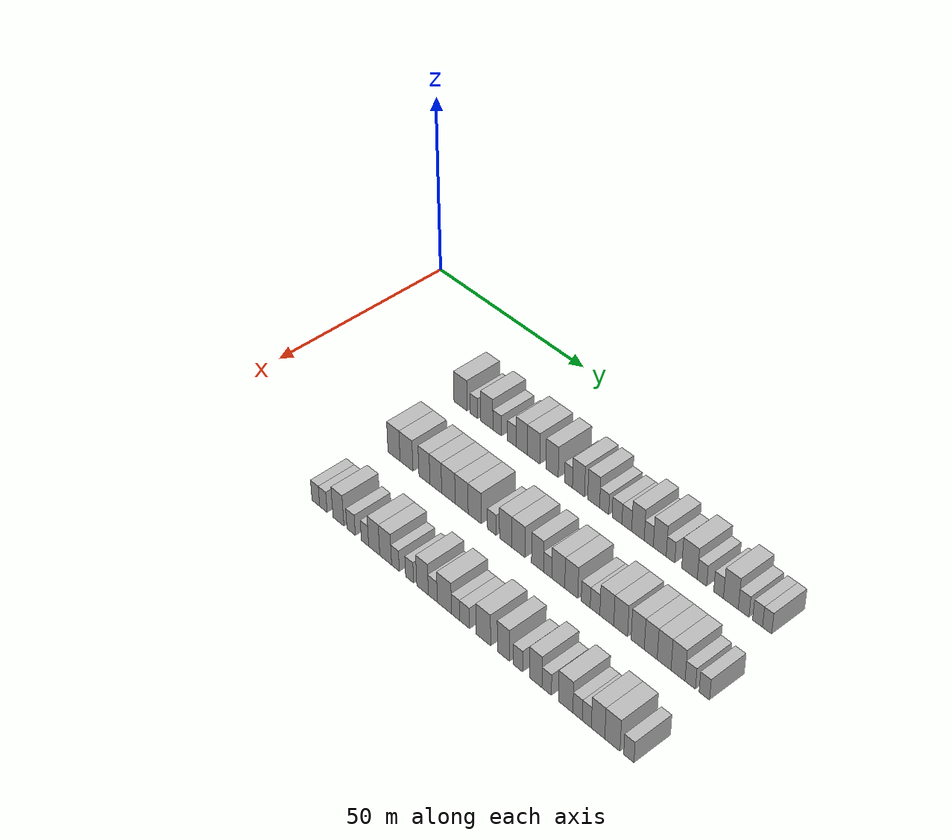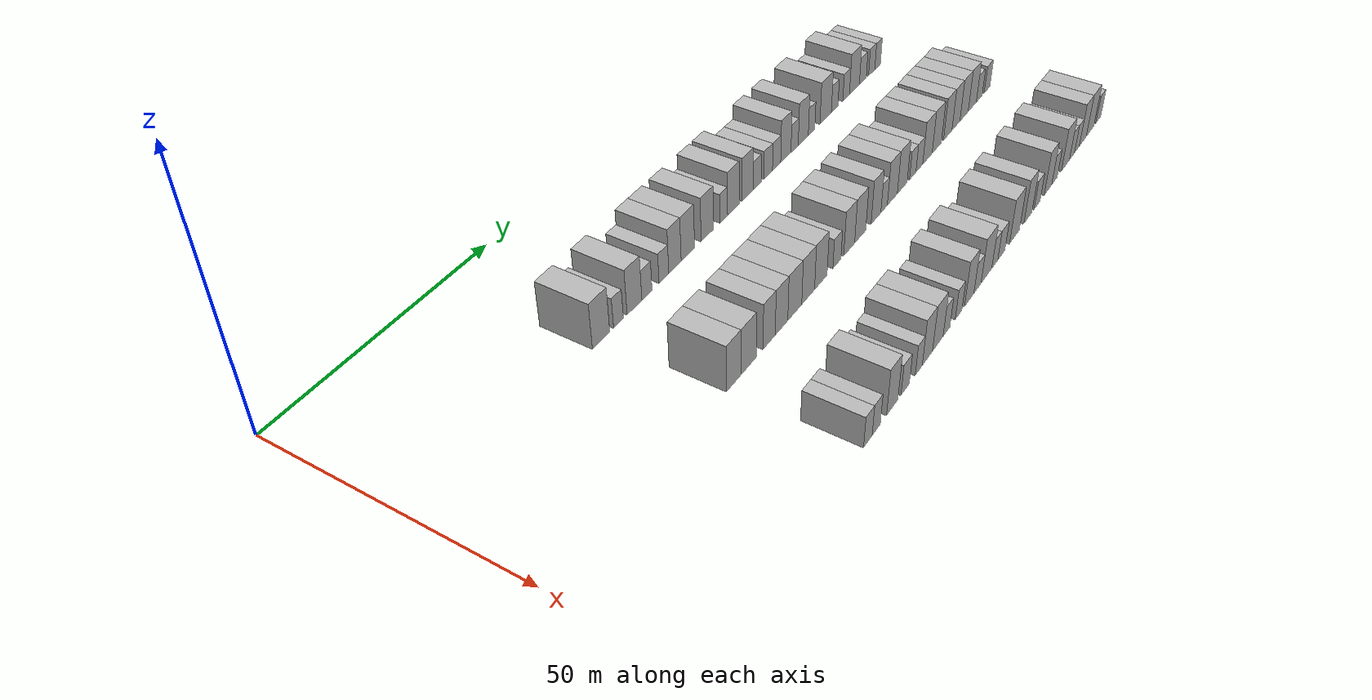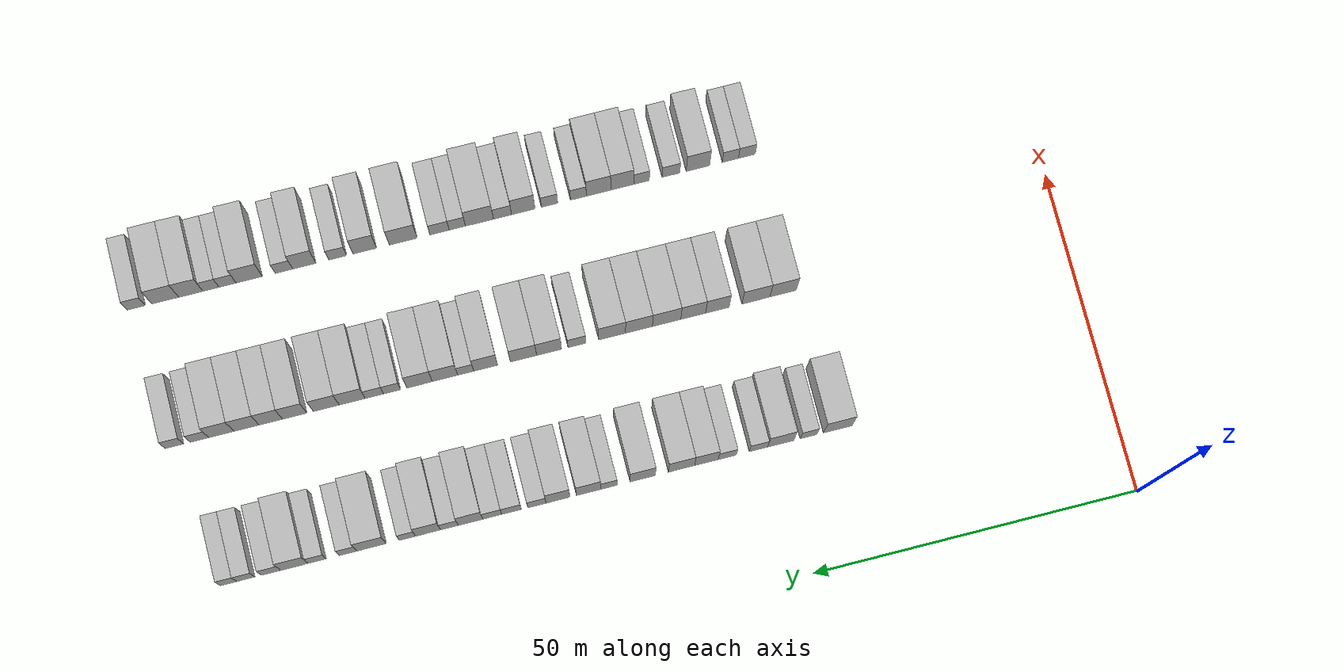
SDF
<sdf version="1.6">
 <world name="default">
  <model name="building_74">
   <static>1</static>
   <pose>25.0000 40.8683 0 0.000000 0.000000 0.000000</pose>
   <link name="link">
    <pose>0 0 4.50 0 0 0</pose>
    <collision name="collision"><geometry><box><size>10.0000 4.4747 9.0000</size></box></geometry></collision>
    <visual name="visual">
     <cast_shadows>0</cast_shadows>
     <geometry><box><size>10.0000 4.4747 9.0000</size></box></geometry>
     <material>
      <script>
       <uri>model://HANNAS_wall/materials/scripts</uri>
       <uri>model://HANNAS_wall/materials/textures</uri>
       <name>vrc/HANNAS_wall</name>
      </script>
     </material>
    </visual>
   </link>
  </model>
  <model name="building_75">
   <static>1</static>
   <pose>25.0000 45.4005 0 0.000000 0.000000 0.000000</pose>
   <link name="link">
    <pose>0 0 3.00 0 0 0</pose>
    <collision name="collision"><geometry><box><size>10.0000 2.5897 6.0000</size></box></geometry></collision>
    <visual name="visual">
     <cast_shadows>0</cast_shadows>
     <geometry><box><size>10.0000 2.5897 6.0000</size></box></geometry>
     <material>
      <script>
       <uri>model://HANNAS_wall/materials/scripts</uri>
       <uri>model://HANNAS_wall/materials/textures</uri>
       <name>vrc/HANNAS_wall</name>
      </script>
     </material>
    </visual>
   </link>
  </model>
  <model name="building_76">
   <static>1</static>
   <pose>25.0000 49.7209 0 0.000000 0.000000 0.000000</pose>
   <link name="link">
    <pose>0 0 4.50 0 0 0</pose>
    <collision name="collision"><geometry><box><size>10.0000 4.0511 9.0000</size></box></geometry></collision>
    <visual name="visual">
     <cast_shadows>0</cast_shadows>
     <geometry><box><size>10.0000 4.0511 9.0000</size></box></geometry>
     <material>
      <script>
       <uri>model://HANNAS_wall/materials/scripts</uri>
       <uri>model://HANNAS_wall/materials/textures</uri>
       <name>vrc/HANNAS_wall</name>
      </script>
     </material>
    </visual>
   </link>
  </model>
  <model name="building_77">
   <static>1</static>
   <pose>25.0000 53.1557 0 0.000000 0.000000 0.000000</pose>
   <link name="link">
    <pose>0 0 3.00 0 0 0</pose>
    <collision name="collision"><geometry><box><size>10.0000 2.8186 6.0000</size></box></geometry></collision>
    <visual name="visual">
     <cast_shadows>0</cast_shadows>
     <geometry><box><size>10.0000 2.8186 6.0000</size></box></geometry>
     <material>
      <script>
       <uri>model://HANNAS_wall/materials/scripts</uri>
       <uri>model://HANNAS_wall/materials/textures</uri>
       <name>vrc/HANNAS_wall</name>
      </script>
     </material>
    </visual>
   </link>
  </model>
  <model name="building_78">
   <static>1</static>
   <pose>25.0000 57.9683 0 0.000000 0.000000 0.000000</pose>
   <link name="link">
    <pose>0 0 3.00 0 0 0</pose>
    <collision name="collision"><geometry><box><size>10.0000 2.8066 6.0000</size></box></geometry></collision>
    <visual name="visual">
     <cast_shadows>0</cast_shadows>
     <geometry><box><size>10.0000 2.8066 6.0000</size></box></geometry>
     <material>
      <script>
       <uri>model://HANNAS_wall/materials/scripts</uri>
       <uri>model://HANNAS_wall/materials/textures</uri>
       <name>vrc/HANNAS_wall</name>
      </script>
     </material>
    </visual>
   </link>
  </model>
  <model name="building_79">
   <static>1</static>
   <pose>25.0000 61.1928 0 0.000000 0.000000 0.000000</pose>
   <link name="link">
    <pose>0 0 4.50 0 0 0</pose>
    <collision name="collision"><geometry><box><size>10.0000 3.6423 9.0000</size></box></geometry></collision>
    <visual name="visual">
     <cast_shadows>0</cast_shadows>
     <geometry><box><size>10.0000 3.6423 9.0000</size></box></geometry>
     <material>
      <script>
       <uri>model://HANNAS_wall/materials/scripts</uri>
       <uri>model://HANNAS_wall/materials/textures</uri>
       <name>vrc/HANNAS_wall</name>
      </script>
     </material>
    </visual>
   </link>
  </model>
  <model name="building_80">
   <static>1</static>
   <pose>25.0000 65.0345 0 0.000000 0.000000 0.000000</pose>
   <link name="link">
    <pose>0 0 4.50 0 0 0</pose>
    <collision name="collision"><geometry><box><size>10.0000 4.0412 9.0000</size></box></geometry></collision>
    <visual name="visual">
     <cast_shadows>0</cast_shadows>
     <geometry><box><size>10.0000 4.0412 9.0000</size></box></geometry>
     <material>
      <script>
       <uri>model://HANNAS_wall/materials/scripts</uri>
       <uri>model://HANNAS_wall/materials/textures</uri>
       <name>vrc/HANNAS_wall</name>
      </script>
     </material>
    </visual>
   </link>
  </model>
  <model name="building_81">
   <static>1</static>
   <pose>25.0000 71.0011 0 0.000000 0.000000 0.000000</pose>
   <link name="link">
    <pose>0 0 4.50 0 0 0</pose>
    <collision name="collision"><geometry><box><size>10.0000 3.8920 9.0000</size></box></geometry></collision>
    <visual name="visual">
     <cast_shadows>0</cast_shadows>
     <geometry><box><size>10.0000 3.8920 9.0000</size></box></geometry>
     <material>
      <script>
       <uri>model://HANNAS_wall/materials/scripts</uri>
       <uri>model://HANNAS_wall/materials/textures</uri>
       <name>vrc/HANNAS_wall</name>
      </script>
     </material>
    </visual>
   </link>
  </model>
  <model name="building_82">
   <static>1</static>
   <pose>25.0000 76.1880 0 0.000000 0.000000 0.000000</pose>
   <link name="link">
    <pose>0 0 3.00 0 0 0</pose>
    <collision name="collision"><geometry><box><size>10.0000 2.4818 6.0000</size></box></geometry></collision>
    <visual name="visual">
     <cast_shadows>0</cast_shadows>
     <geometry><box><size>10.0000 2.4818 6.0000</size></box></geometry>
     <material>
      <script>
       <uri>model://HANNAS_wall/materials/scripts</uri>
       <uri>model://HANNAS_wall/materials/textures</uri>
       <name>vrc/HANNAS_wall</name>
      </script>
     </material>
    </visual>
   </link>
  </model>
  <model name="building_83">
   <static>1</static>
   <pose>25.0000 79.3085 0 0.000000 0.000000 0.000000</pose>
   <link name="link">
    <pose>0 0 4.50 0 0 0</pose>
    <collision name="collision"><geometry><box><size>10.0000 3.7594 9.0000</size></box></geometry></collision>
    <visual name="visual">
     <cast_shadows>0</cast_shadows>
     <geometry><box><size>10.0000 3.7594 9.0000</size></box></geometry>
     <material>
      <script>
       <uri>model://HANNAS_wall/materials/scripts</uri>
       <uri>model://HANNAS_wall/materials/textures</uri>
       <name>vrc/HANNAS_wall</name>
      </script>
     </material>
    </visual>
   </link>
  </model>
  <model name="building_84">
   <static>1</static>
   <pose>25.0000 84.0149 0 0.000000 0.000000 0.000000</pose>
   <link name="link">
    <pose>0 0 4.50 0 0 0</pose>
    <collision name="collision"><geometry><box><size>10.0000 3.6535 9.0000</size></box></geometry></collision>
    <visual name="visual">
     <cast_shadows>0</cast_shadows>
     <geometry><box><size>10.0000 3.6535 9.0000</size></box></geometry>
     <material>
      <script>
       <uri>model://HANNAS_wall/materials/scripts</uri>
       <uri>model://HANNAS_wall/materials/textures</uri>
       <name>vrc/HANNAS_wall</name>
      </script>
     </material>
    </visual>
   </link>
  </model>
  <model name="building_85">
   <static>1</static>
   <pose>25.0000 87.2444 0 0.000000 0.000000 0.000000</pose>
   <link name="link">
    <pose>0 0 3.00 0 0 0</pose>
    <collision name="collision"><geometry><box><size>10.0000 2.8053 6.0000</size></box></geometry></collision>
    <visual name="visual">
     <cast_shadows>0</cast_shadows>
     <geometry><box><size>10.0000 2.8053 6.0000</size></box></geometry>
     <material>
      <script>
       <uri>model://HANNAS_wall/materials/scripts</uri>
       <uri>model://HANNAS_wall/materials/textures</uri>
       <name>vrc/HANNAS_wall</name>
      </script>
     </material>
    </visual>
   </link>
  </model>
  <model name="building_86">
   <static>1</static>
   <pose>25.0000 91.1363 0 0.000000 0.000000 0.000000</pose>
   <link name="link">
    <pose>0 0 3.00 0 0 0</pose>
    <collision name="collision"><geometry><box><size>10.0000 2.9786 6.0000</size></box></geometry></collision>
    <visual name="visual">
     <cast_shadows>0</cast_shadows>
     <geometry><box><size>10.0000 2.9786 6.0000</size></box></geometry>
     <material>
      <script>
       <uri>model://HANNAS_wall/materials/scripts</uri>
       <uri>model://HANNAS_wall/materials/textures</uri>
       <name>vrc/HANNAS_wall</name>
      </script>
     </material>
    </visual>
   </link>
  </model>
  <model name="building_87">
   <static>1</static>
   <pose>25.0000 94.0876 0 0.000000 0.000000 0.000000</pose>
   <link name="link">
    <pose>0 0 3.00 0 0 0</pose>
    <collision name="collision"><geometry><box><size>10.0000 2.9240 6.0000</size></box></geometry></collision>
    <visual name="visual">
     <cast_shadows>0</cast_shadows>
     <geometry><box><size>10.0000 2.9240 6.0000</size></box></geometry>
     <material>
      <script>
       <uri>model://HANNAS_wall/materials/scripts</uri>
       <uri>model://HANNAS_wall/materials/textures</uri>
       <name>vrc/HANNAS_wall</name>
      </script>
     </material>
    </visual>
   </link>
  </model>
  <model name="building_88">
   <static>1</static>
   <pose>25.0000 97.4204 0 0.000000 0.000000 0.000000</pose>
   <link name="link">
    <pose>0 0 4.50 0 0 0</pose>
    <collision name="collision"><geometry><box><size>10.0000 3.7414 9.0000</size></box></geometry></collision>
    <visual name="visual">
     <cast_shadows>0</cast_shadows>
     <geometry><box><size>10.0000 3.7414 9.0000</size></box></geometry>
     <material>
      <script>
       <uri>model://HANNAS_wall/materials/scripts</uri>
       <uri>model://HANNAS_wall/materials/textures</uri>
       <name>vrc/HANNAS_wall</name>
      </script>
     </material>
    </visual>
   </link>
  </model>
  <model name="building_89">
   <static>1</static>
   <pose>25.0000 100.6411 0 0.000000 0.000000 0.000000</pose>
   <link name="link">
    <pose>0 0 3.00 0 0 0</pose>
    <collision name="collision"><geometry><box><size>10.0000 2.7001 6.0000</size></box></geometry></collision>
    <visual name="visual">
     <cast_shadows>0</cast_shadows>
     <geometry><box><size>10.0000 2.7001 6.0000</size></box></geometry>
     <material>
      <script>
       <uri>model://HANNAS_wall/materials/scripts</uri>
       <uri>model://HANNAS_wall/materials/textures</uri>
       <name>vrc/HANNAS_wall</name>
      </script>
     </material>
    </visual>
   </link>
  </model>
  <model name="building_90">
   <static>1</static>
   <pose>25.0000 103.8896 0 0.000000 0.000000 0.000000</pose>
   <link name="link">
    <pose>0 0 4.50 0 0 0</pose>
    <collision name="collision"><geometry><box><size>10.0000 3.7968 9.0000</size></box></geometry></collision>
    <visual name="visual">
     <cast_shadows>0</cast_shadows>
     <geometry><box><size>10.0000 3.7968 9.0000</size></box></geometry>
     <material>
      <script>
       <uri>model://HANNAS_wall/materials/scripts</uri>
       <uri>model://HANNAS_wall/materials/textures</uri>
       <name>vrc/HANNAS_wall</name>
      </script>
     </material>
    </visual>
   </link>
  </model>
  <model name="building_91">
   <static>1</static>
   <pose>25.0000 107.0395 0 0.000000 0.000000 0.000000</pose>
   <link name="link">
    <pose>0 0 3.00 0 0 0</pose>
    <collision name="collision"><geometry><box><size>10.0000 2.5030 6.0000</size></box></geometry></collision>
    <visual name="visual">
     <cast_shadows>0</cast_shadows>
     <geometry><box><size>10.0000 2.5030 6.0000</size></box></geometry>
     <material>
      <script>
       <uri>model://HANNAS_wall/materials/scripts</uri>
       <uri>model://HANNAS_wall/materials/textures</uri>
       <name>vrc/HANNAS_wall</name>
      </script>
     </material>
    </visual>
   </link>
  </model>
  <model name="building_92">
   <static>1</static>
   <pose>25.0000 112.5336 0 0.000000 0.000000 0.000000</pose>
   <link name="link">
    <pose>0 0 4.50 0 0 0</pose>
    <collision name="collision"><geometry><box><size>10.0000 4.4852 9.0000</size></box></geometry></collision>
    <visual name="visual">
     <cast_shadows>0</cast_shadows>
     <geometry><box><size>10.0000 4.4852 9.0000</size></box></geometry>
     <material>
      <script>
       <uri>model://HANNAS_wall/materials/scripts</uri>
       <uri>model://HANNAS_wall/materials/textures</uri>
       <name>vrc/HANNAS_wall</name>
      </script>
     </material>
    </visual>
   </link>
  </model>
  <model name="building_93">
   <static>1</static>
   <pose>25.0000 116.1136 0 0.000000 0.000000 0.000000</pose>
   <link name="link">
    <pose>0 0 3.00 0 0 0</pose>
    <collision name="collision"><geometry><box><size>10.0000 2.6748 6.0000</size></box></geometry></collision>
    <visual name="visual">
     <cast_shadows>0</cast_shadows>
     <geometry><box><size>10.0000 2.6748 6.0000</size></box></geometry>
     <material>
      <script>
       <uri>model://HANNAS_wall/materials/scripts</uri>
       <uri>model://HANNAS_wall/materials/textures</uri>
       <name>vrc/HANNAS_wall</name>
      </script>
     </material>
    </visual>
   </link>
  </model>
  <model name="building_94">
   <static>1</static>
   <pose>25.0000 120.8143 0 0.000000 0.000000 0.000000</pose>
   <link name="link">
    <pose>0 0 3.00 0 0 0</pose>
    <collision name="collision"><geometry><box><size>10.0000 2.7266 6.0000</size></box></geometry></collision>
    <visual name="visual">
     <cast_shadows>0</cast_shadows>
     <geometry><box><size>10.0000 2.7266 6.0000</size></box></geometry>
     <material>
      <script>
       <uri>model://HANNAS_wall/materials/scripts</uri>
       <uri>model://HANNAS_wall/materials/textures</uri>
       <name>vrc/HANNAS_wall</name>
      </script>
     </material>
    </visual>
   </link>
  </model>
  <model name="building_95">
   <static>1</static>
   <pose>25.0000 124.2564 0 0.000000 0.000000 0.000000</pose>
   <link name="link">
    <pose>0 0 4.50 0 0 0</pose>
    <collision name="collision"><geometry><box><size>10.0000 4.1578 9.0000</size></box></geometry></collision>
    <visual name="visual">
     <cast_shadows>0</cast_shadows>
     <geometry><box><size>10.0000 4.1578 9.0000</size></box></geometry>
     <material>
      <script>
       <uri>model://HANNAS_wall/materials/scripts</uri>
       <uri>model://HANNAS_wall/materials/textures</uri>
       <name>vrc/HANNAS_wall</name>
      </script>
     </material>
    </visual>
   </link>
  </model>
  <model name="building_96">
   <static>1</static>
   <pose>25.0000 127.8179 0 0.000000 0.000000 0.000000</pose>
   <link name="link">
    <pose>0 0 3.00 0 0 0</pose>
    <collision name="collision"><geometry><box><size>10.0000 2.9652 6.0000</size></box></geometry></collision>
    <visual name="visual">
     <cast_shadows>0</cast_shadows>
     <geometry><box><size>10.0000 2.9652 6.0000</size></box></geometry>
     <material>
      <script>
       <uri>model://HANNAS_wall/materials/scripts</uri>
       <uri>model://HANNAS_wall/materials/textures</uri>
       <name>vrc/HANNAS_wall</name>
      </script>
     </material>
    </visual>
   </link>
  </model>
  <model name="building_97">
   <static>1</static>
   <pose>25.0000 131.6597 0 0.000000 0.000000 0.000000</pose>
   <link name="link">
    <pose>0 0 3.00 0 0 0</pose>
    <collision name="collision"><geometry><box><size>10.0000 2.7185 6.0000</size></box></geometry></collision>
    <visual name="visual">
     <cast_shadows>0</cast_shadows>
     <geometry><box><size>10.0000 2.7185 6.0000</size></box></geometry>
     <material>
      <script>
       <uri>model://HANNAS_wall/materials/scripts</uri>
       <uri>model://HANNAS_wall/materials/textures</uri>
       <name>vrc/HANNAS_wall</name>
      </script>
     </material>
    </visual>
   </link>
  </model>
  <model name="building_98">
   <static>1</static>
   <pose>25.0000 134.2687 0 0.000000 0.000000 0.000000</pose>
   <link name="link">
    <pose>0 0 3.00 0 0 0</pose>
    <collision name="collision"><geometry><box><size>10.0000 2.4994 6.0000</size></box></geometry></collision>
    <visual name="visual">
     <cast_shadows>0</cast_shadows>
     <geometry><box><size>10.0000 2.4994 6.0000</size></box></geometry>
     <material>
      <script>
       <uri>model://HANNAS_wall/materials/scripts</uri>
       <uri>model://HANNAS_wall/materials/textures</uri>
       <name>vrc/HANNAS_wall</name>
      </script>
     </material>
    </visual>
   </link>
  </model>
  <model name="building_197">
   <static>1</static>
   <pose>47.0000 43.4838 0 0.000000 0.000000 0.000000</pose>
   <link name="link">
    <pose>0 0 4.50 0 0 0</pose>
    <collision name="collision"><geometry><box><size>10.0000 4.1152 9.0000</size></box></geometry></collision>
    <visual name="visual">
     <cast_shadows>0</cast_shadows>
     <geometry><box><size>10.0000 4.1152 9.0000</size></box></geometry>
     <material>
      <script>
       <uri>model://HANNAS_wall/materials/scripts</uri>
       <uri>model://HANNAS_wall/materials/textures</uri>
       <name>vrc/HANNAS_wall</name>
      </script>
     </material>
    </visual>
   </link>
  </model>
  <model name="building_198">
   <static>1</static>
   <pose>47.0000 47.7225 0 0.000000 0.000000 0.000000</pose>
   <link name="link">
    <pose>0 0 4.50 0 0 0</pose>
    <collision name="collision"><geometry><box><size>10.0000 4.3621 9.0000</size></box></geometry></collision>
    <visual name="visual">
     <cast_shadows>0</cast_shadows>
     <geometry><box><size>10.0000 4.3621 9.0000</size></box></geometry>
     <material>
      <script>
       <uri>model://HANNAS_wall/materials/scripts</uri>
       <uri>model://HANNAS_wall/materials/textures</uri>
       <name>vrc/HANNAS_wall</name>
      </script>
     </material>
    </visual>
   </link>
  </model>
  <model name="building_199">
   <static>1</static>
   <pose>47.0000 53.7377 0 0.000000 0.000000 0.000000</pose>
   <link name="link">
    <pose>0 0 4.50 0 0 0</pose>
    <collision name="collision"><geometry><box><size>10.0000 3.6683 9.0000</size></box></geometry></collision>
    <visual name="visual">
     <cast_shadows>0</cast_shadows>
     <geometry><box><size>10.0000 3.6683 9.0000</size></box></geometry>
     <material>
      <script>
       <uri>model://HANNAS_wall/materials/scripts</uri>
       <uri>model://HANNAS_wall/materials/textures</uri>
       <name>vrc/HANNAS_wall</name>
      </script>
     </material>
    </visual>
   </link>
  </model>
  <model name="building_200">
   <static>1</static>
   <pose>47.0000 57.5032 0 0.000000 0.000000 0.000000</pose>
   <link name="link">
    <pose>0 0 4.50 0 0 0</pose>
    <collision name="collision"><geometry><box><size>10.0000 3.8627 9.0000</size></box></geometry></collision>
    <visual name="visual">
     <cast_shadows>0</cast_shadows>
     <geometry><box><size>10.0000 3.8627 9.0000</size></box></geometry>
     <material>
      <script>
       <uri>model://HANNAS_wall/materials/scripts</uri>
       <uri>model://HANNAS_wall/materials/textures</uri>
       <name>vrc/HANNAS_wall</name>
      </script>
     </material>
    </visual>
   </link>
  </model>
  <model name="building_201">
   <static>1</static>
   <pose>47.0000 61.6436 0 0.000000 0.000000 0.000000</pose>
   <link name="link">
    <pose>0 0 4.50 0 0 0</pose>
    <collision name="collision"><geometry><box><size>10.0000 4.4180 9.0000</size></box></geometry></collision>
    <visual name="visual">
     <cast_shadows>0</cast_shadows>
     <geometry><box><size>10.0000 4.4180 9.0000</size></box></geometry>
     <material>
      <script>
       <uri>model://HANNAS_wall/materials/scripts</uri>
       <uri>model://HANNAS_wall/materials/textures</uri>
       <name>vrc/HANNAS_wall</name>
      </script>
     </material>
    </visual>
   </link>
  </model>
  <model name="building_202">
   <static>1</static>
   <pose>47.0000 65.9420 0 0.000000 0.000000 0.000000</pose>
   <link name="link">
    <pose>0 0 4.50 0 0 0</pose>
    <collision name="collision"><geometry><box><size>10.0000 4.1789 9.0000</size></box></geometry></collision>
    <visual name="visual">
     <cast_shadows>0</cast_shadows>
     <geometry><box><size>10.0000 4.1789 9.0000</size></box></geometry>
     <material>
      <script>
       <uri>model://HANNAS_wall/materials/scripts</uri>
       <uri>model://HANNAS_wall/materials/textures</uri>
       <name>vrc/HANNAS_wall</name>
      </script>
     </material>
    </visual>
   </link>
  </model>
  <model name="building_203">
   <static>1</static>
   <pose>47.0000 70.1157 0 0.000000 0.000000 0.000000</pose>
   <link name="link">
    <pose>0 0 4.50 0 0 0</pose>
    <collision name="collision"><geometry><box><size>10.0000 4.1684 9.0000</size></box></geometry></collision>
    <visual name="visual">
     <cast_shadows>0</cast_shadows>
     <geometry><box><size>10.0000 4.1684 9.0000</size></box></geometry>
     <material>
      <script>
       <uri>model://HANNAS_wall/materials/scripts</uri>
       <uri>model://HANNAS_wall/materials/textures</uri>
       <name>vrc/HANNAS_wall</name>
      </script>
     </material>
    </visual>
   </link>
  </model>
  <model name="building_204">
   <static>1</static>
   <pose>47.0000 75.5843 0 0.000000 0.000000 0.000000</pose>
   <link name="link">
    <pose>0 0 3.00 0 0 0</pose>
    <collision name="collision"><geometry><box><size>10.0000 2.7689 6.0000</size></box></geometry></collision>
    <visual name="visual">
     <cast_shadows>0</cast_shadows>
     <geometry><box><size>10.0000 2.7689 6.0000</size></box></geometry>
     <material>
      <script>
       <uri>model://HANNAS_wall/materials/scripts</uri>
       <uri>model://HANNAS_wall/materials/textures</uri>
       <name>vrc/HANNAS_wall</name>
      </script>
     </material>
    </visual>
   </link>
  </model>
  <model name="building_205">
   <static>1</static>
   <pose>47.0000 79.9015 0 0.000000 0.000000 0.000000</pose>
   <link name="link">
    <pose>0 0 4.50 0 0 0</pose>
    <collision name="collision"><geometry><box><size>10.0000 3.8653 9.0000</size></box></geometry></collision>
    <visual name="visual">
     <cast_shadows>0</cast_shadows>
     <geometry><box><size>10.0000 3.8653 9.0000</size></box></geometry>
     <material>
      <script>
       <uri>model://HANNAS_wall/materials/scripts</uri>
       <uri>model://HANNAS_wall/materials/textures</uri>
       <name>vrc/HANNAS_wall</name>
      </script>
     </material>
    </visual>
   </link>
  </model>
  <model name="building_206">
   <static>1</static>
   <pose>47.0000 83.8591 0 0.000000 0.000000 0.000000</pose>
   <link name="link">
    <pose>0 0 4.50 0 0 0</pose>
    <collision name="collision"><geometry><box><size>10.0000 4.0500 9.0000</size></box></geometry></collision>
    <visual name="visual">
     <cast_shadows>0</cast_shadows>
     <geometry><box><size>10.0000 4.0500 9.0000</size></box></geometry>
     <material>
      <script>
       <uri>model://HANNAS_wall/materials/scripts</uri>
       <uri>model://HANNAS_wall/materials/textures</uri>
       <name>vrc/HANNAS_wall</name>
      </script>
     </material>
    </visual>
   </link>
  </model>
  <model name="building_207">
   <static>1</static>
   <pose>47.0000 89.7185 0 0.000000 0.000000 0.000000</pose>
   <link name="link">
    <pose>0 0 4.50 0 0 0</pose>
    <collision name="collision"><geometry><box><size>10.0000 3.6687 9.0000</size></box></geometry></collision>
    <visual name="visual">
     <cast_shadows>0</cast_shadows>
     <geometry><box><size>10.0000 3.6687 9.0000</size></box></geometry>
     <material>
      <script>
       <uri>model://HANNAS_wall/materials/scripts</uri>
       <uri>model://HANNAS_wall/materials/textures</uri>
       <name>vrc/HANNAS_wall</name>
      </script>
     </material>
    </visual>
   </link>
  </model>
  <model name="building_208">
   <static>1</static>
   <pose>47.0000 92.7969 0 0.000000 0.000000 0.000000</pose>
   <link name="link">
    <pose>0 0 3.00 0 0 0</pose>
    <collision name="collision"><geometry><box><size>10.0000 2.4881 6.0000</size></box></geometry></collision>
    <visual name="visual">
     <cast_shadows>0</cast_shadows>
     <geometry><box><size>10.0000 2.4881 6.0000</size></box></geometry>
     <material>
      <script>
       <uri>model://HANNAS_wall/materials/scripts</uri>
       <uri>model://HANNAS_wall/materials/textures</uri>
       <name>vrc/HANNAS_wall</name>
      </script>
     </material>
    </visual>
   </link>
  </model>
  <model name="building_209">
   <static>1</static>
   <pose>47.0000 95.9974 0 0.000000 0.000000 0.000000</pose>
   <link name="link">
    <pose>0 0 4.50 0 0 0</pose>
    <collision name="collision"><geometry><box><size>10.0000 3.9130 9.0000</size></box></geometry></collision>
    <visual name="visual">
     <cast_shadows>0</cast_shadows>
     <geometry><box><size>10.0000 3.9130 9.0000</size></box></geometry>
     <material>
      <script>
       <uri>model://HANNAS_wall/materials/scripts</uri>
       <uri>model://HANNAS_wall/materials/textures</uri>
       <name>vrc/HANNAS_wall</name>
      </script>
     </material>
    </visual>
   </link>
  </model>
  <model name="building_210">
   <static>1</static>
   <pose>47.0000 99.9039 0 0.000000 0.000000 0.000000</pose>
   <link name="link">
    <pose>0 0 4.50 0 0 0</pose>
    <collision name="collision"><geometry><box><size>10.0000 3.9000 9.0000</size></box></geometry></collision>
    <visual name="visual">
     <cast_shadows>0</cast_shadows>
     <geometry><box><size>10.0000 3.9000 9.0000</size></box></geometry>
     <material>
      <script>
       <uri>model://HANNAS_wall/materials/scripts</uri>
       <uri>model://HANNAS_wall/materials/textures</uri>
       <name>vrc/HANNAS_wall</name>
      </script>
     </material>
    </visual>
   </link>
  </model>
  <model name="building_211">
   <static>1</static>
   <pose>47.0000 104.1709 0 0.000000 0.000000 0.000000</pose>
   <link name="link">
    <pose>0 0 3.00 0 0 0</pose>
    <collision name="collision"><geometry><box><size>10.0000 2.6340 6.0000</size></box></geometry></collision>
    <visual name="visual">
     <cast_shadows>0</cast_shadows>
     <geometry><box><size>10.0000 2.6340 6.0000</size></box></geometry>
     <material>
      <script>
       <uri>model://HANNAS_wall/materials/scripts</uri>
       <uri>model://HANNAS_wall/materials/textures</uri>
       <name>vrc/HANNAS_wall</name>
      </script>
     </material>
    </visual>
   </link>
  </model>
  <model name="building_212">
   <static>1</static>
   <pose>47.0000 106.8915 0 0.000000 0.000000 0.000000</pose>
   <link name="link">
    <pose>0 0 3.00 0 0 0</pose>
    <collision name="collision"><geometry><box><size>10.0000 2.8073 6.0000</size></box></geometry></collision>
    <visual name="visual">
     <cast_shadows>0</cast_shadows>
     <geometry><box><size>10.0000 2.8073 6.0000</size></box></geometry>
     <material>
      <script>
       <uri>model://HANNAS_wall/materials/scripts</uri>
       <uri>model://HANNAS_wall/materials/textures</uri>
       <name>vrc/HANNAS_wall</name>
      </script>
     </material>
    </visual>
   </link>
  </model>
  <model name="building_213">
   <static>1</static>
   <pose>47.0000 110.3066 0 0.000000 0.000000 0.000000</pose>
   <link name="link">
    <pose>0 0 4.50 0 0 0</pose>
    <collision name="collision"><geometry><box><size>10.0000 4.0230 9.0000</size></box></geometry></collision>
    <visual name="visual">
     <cast_shadows>0</cast_shadows>
     <geometry><box><size>10.0000 4.0230 9.0000</size></box></geometry>
     <material>
      <script>
       <uri>model://HANNAS_wall/materials/scripts</uri>
       <uri>model://HANNAS_wall/materials/textures</uri>
       <name>vrc/HANNAS_wall</name>
      </script>
     </material>
    </visual>
   </link>
  </model>
  <model name="building_214">
   <static>1</static>
   <pose>47.0000 114.3036 0 0.000000 0.000000 0.000000</pose>
   <link name="link">
    <pose>0 0 4.50 0 0 0</pose>
    <collision name="collision"><geometry><box><size>10.0000 3.9710 9.0000</size></box></geometry></collision>
    <visual name="visual">
     <cast_shadows>0</cast_shadows>
     <geometry><box><size>10.0000 3.9710 9.0000</size></box></geometry>
     <material>
      <script>
       <uri>model://HANNAS_wall/materials/scripts</uri>
       <uri>model://HANNAS_wall/materials/textures</uri>
       <name>vrc/HANNAS_wall</name>
      </script>
     </material>
    </visual>
   </link>
  </model>
  <model name="building_215">
   <static>1</static>
   <pose>47.0000 119.1590 0 0.000000 0.000000 0.000000</pose>
   <link name="link">
    <pose>0 0 4.50 0 0 0</pose>
    <collision name="collision"><geometry><box><size>10.0000 3.7399 9.0000</size></box></geometry></collision>
    <visual name="visual">
     <cast_shadows>0</cast_shadows>
     <geometry><box><size>10.0000 3.7399 9.0000</size></box></geometry>
     <material>
      <script>
       <uri>model://HANNAS_wall/materials/scripts</uri>
       <uri>model://HANNAS_wall/materials/textures</uri>
       <name>vrc/HANNAS_wall</name>
      </script>
     </material>
    </visual>
   </link>
  </model>
  <model name="building_216">
   <static>1</static>
   <pose>47.0000 122.8378 0 0.000000 0.000000 0.000000</pose>
   <link name="link">
    <pose>0 0 4.50 0 0 0</pose>
    <collision name="collision"><geometry><box><size>10.0000 3.6177 9.0000</size></box></geometry></collision>
    <visual name="visual">
     <cast_shadows>0</cast_shadows>
     <geometry><box><size>10.0000 3.6177 9.0000</size></box></geometry>
     <material>
      <script>
       <uri>model://HANNAS_wall/materials/scripts</uri>
       <uri>model://HANNAS_wall/materials/textures</uri>
       <name>vrc/HANNAS_wall</name>
      </script>
     </material>
    </visual>
   </link>
  </model>
  <model name="building_217">
   <static>1</static>
   <pose>47.0000 126.5728 0 0.000000 0.000000 0.000000</pose>
   <link name="link">
    <pose>0 0 4.50 0 0 0</pose>
    <collision name="collision"><geometry><box><size>10.0000 3.8522 9.0000</size></box></geometry></collision>
    <visual name="visual">
     <cast_shadows>0</cast_shadows>
     <geometry><box><size>10.0000 3.8522 9.0000</size></box></geometry>
     <material>
      <script>
       <uri>model://HANNAS_wall/materials/scripts</uri>
       <uri>model://HANNAS_wall/materials/textures</uri>
       <name>vrc/HANNAS_wall</name>
      </script>
     </material>
    </visual>
   </link>
  </model>
  <model name="building_218">
   <static>1</static>
   <pose>47.0000 130.4287 0 0.000000 0.000000 0.000000</pose>
   <link name="link">
    <pose>0 0 4.50 0 0 0</pose>
    <collision name="collision"><geometry><box><size>10.0000 3.8596 9.0000</size></box></geometry></collision>
    <visual name="visual">
     <cast_shadows>0</cast_shadows>
     <geometry><box><size>10.0000 3.8596 9.0000</size></box></geometry>
     <material>
      <script>
       <uri>model://HANNAS_wall/materials/scripts</uri>
       <uri>model://HANNAS_wall/materials/textures</uri>
       <name>vrc/HANNAS_wall</name>
      </script>
     </material>
    </visual>
   </link>
  </model>
  <model name="building_219">
   <static>1</static>
   <pose>47.0000 133.7751 0 0.000000 0.000000 0.000000</pose>
   <link name="link">
    <pose>0 0 3.00 0 0 0</pose>
    <collision name="collision"><geometry><box><size>10.0000 2.8331 6.0000</size></box></geometry></collision>
    <visual name="visual">
     <cast_shadows>0</cast_shadows>
     <geometry><box><size>10.0000 2.8331 6.0000</size></box></geometry>
     <material>
      <script>
       <uri>model://HANNAS_wall/materials/scripts</uri>
       <uri>model://HANNAS_wall/materials/textures</uri>
       <name>vrc/HANNAS_wall</name>
      </script>
     </material>
    </visual>
   </link>
  </model>
  <model name="building_220">
   <static>1</static>
   <pose>47.0000 137.6026 0 0.000000 0.000000 0.000000</pose>
   <link name="link">
    <pose>0 0 3.00 0 0 0</pose>
    <collision name="collision"><geometry><box><size>10.0000 2.8220 6.0000</size></box></geometry></collision>
    <visual name="visual">
     <cast_shadows>0</cast_shadows>
     <geometry><box><size>10.0000 2.8220 6.0000</size></box></geometry>
     <material>
      <script>
       <uri>model://HANNAS_wall/materials/scripts</uri>
       <uri>model://HANNAS_wall/materials/textures</uri>
       <name>vrc/HANNAS_wall</name>
      </script>
     </material>
    </visual>
   </link>
  </model>
  <model name="building_314">
   <static>1</static>
   <pose>69.0000 43.3463 0 0.000000 0.000000 0.000000</pose>
   <link name="link">
    <pose>0 0 3.00 0 0 0</pose>
    <collision name="collision"><geometry><box><size>10.0000 2.6458 6.0000</size></box></geometry></collision>
    <visual name="visual">
     <cast_shadows>0</cast_shadows>
     <geometry><box><size>10.0000 2.6458 6.0000</size></box></geometry>
     <material>
      <script>
       <uri>model://HANNAS_wall/materials/scripts</uri>
       <uri>model://HANNAS_wall/materials/textures</uri>
       <name>vrc/HANNAS_wall</name>
      </script>
     </material>
    </visual>
   </link>
  </model>
  <model name="building_315">
   <static>1</static>
   <pose>69.0000 45.9379 0 0.000000 0.000000 0.000000</pose>
   <link name="link">
    <pose>0 0 3.00 0 0 0</pose>
    <collision name="collision"><geometry><box><size>10.0000 2.5374 6.0000</size></box></geometry></collision>
    <visual name="visual">
     <cast_shadows>0</cast_shadows>
     <geometry><box><size>10.0000 2.5374 6.0000</size></box></geometry>
     <material>
      <script>
       <uri>model://HANNAS_wall/materials/scripts</uri>
       <uri>model://HANNAS_wall/materials/textures</uri>
       <name>vrc/HANNAS_wall</name>
      </script>
     </material>
    </visual>
   </link>
  </model>
  <model name="building_316">
   <static>1</static>
   <pose>69.0000 51.0507 0 0.000000 0.000000 0.000000</pose>
   <link name="link">
    <pose>0 0 4.50 0 0 0</pose>
    <collision name="collision"><geometry><box><size>10.0000 3.6882 9.0000</size></box></geometry></collision>
    <visual name="visual">
     <cast_shadows>0</cast_shadows>
     <geometry><box><size>10.0000 3.6882 9.0000</size></box></geometry>
     <material>
      <script>
       <uri>model://HANNAS_wall/materials/scripts</uri>
       <uri>model://HANNAS_wall/materials/textures</uri>
       <name>vrc/HANNAS_wall</name>
      </script>
     </material>
    </visual>
   </link>
  </model>
  <model name="building_317">
   <static>1</static>
   <pose>69.0000 55.2961 0 0.000000 0.000000 0.000000</pose>
   <link name="link">
    <pose>0 0 3.00 0 0 0</pose>
    <collision name="collision"><geometry><box><size>10.0000 2.8026 6.0000</size></box></geometry></collision>
    <visual name="visual">
     <cast_shadows>0</cast_shadows>
     <geometry><box><size>10.0000 2.8026 6.0000</size></box></geometry>
     <material>
      <script>
       <uri>model://HANNAS_wall/materials/scripts</uri>
       <uri>model://HANNAS_wall/materials/textures</uri>
       <name>vrc/HANNAS_wall</name>
      </script>
     </material>
    </visual>
   </link>
  </model>
  <model name="building_318">
   <static>1</static>
   <pose>69.0000 59.9102 0 0.000000 0.000000 0.000000</pose>
   <link name="link">
    <pose>0 0 3.00 0 0 0</pose>
    <collision name="collision"><geometry><box><size>10.0000 2.4254 6.0000</size></box></geometry></collision>
    <visual name="visual">
     <cast_shadows>0</cast_shadows>
     <geometry><box><size>10.0000 2.4254 6.0000</size></box></geometry>
     <material>
      <script>
       <uri>model://HANNAS_wall/materials/scripts</uri>
       <uri>model://HANNAS_wall/materials/textures</uri>
       <name>vrc/HANNAS_wall</name>
      </script>
     </material>
    </visual>
   </link>
  </model>
  <model name="building_319">
   <static>1</static>
   <pose>69.0000 62.9332 0 0.000000 0.000000 0.000000</pose>
   <link name="link">
    <pose>0 0 4.50 0 0 0</pose>
    <collision name="collision"><geometry><box><size>10.0000 3.6206 9.0000</size></box></geometry></collision>
    <visual name="visual">
     <cast_shadows>0</cast_shadows>
     <geometry><box><size>10.0000 3.6206 9.0000</size></box></geometry>
     <material>
      <script>
       <uri>model://HANNAS_wall/materials/scripts</uri>
       <uri>model://HANNAS_wall/materials/textures</uri>
       <name>vrc/HANNAS_wall</name>
      </script>
     </material>
    </visual>
   </link>
  </model>
  <model name="building_320">
   <static>1</static>
   <pose>69.0000 66.6584 0 0.000000 0.000000 0.000000</pose>
   <link name="link">
    <pose>0 0 4.50 0 0 0</pose>
    <collision name="collision"><geometry><box><size>10.0000 3.8300 9.0000</size></box></geometry></collision>
    <visual name="visual">
     <cast_shadows>0</cast_shadows>
     <geometry><box><size>10.0000 3.8300 9.0000</size></box></geometry>
     <material>
      <script>
       <uri>model://HANNAS_wall/materials/scripts</uri>
       <uri>model://HANNAS_wall/materials/textures</uri>
       <name>vrc/HANNAS_wall</name>
      </script>
     </material>
    </visual>
   </link>
  </model>
  <model name="building_321">
   <static>1</static>
   <pose>69.0000 69.8251 0 0.000000 0.000000 0.000000</pose>
   <link name="link">
    <pose>0 0 3.00 0 0 0</pose>
    <collision name="collision"><geometry><box><size>10.0000 2.5034 6.0000</size></box></geometry></collision>
    <visual name="visual">
     <cast_shadows>0</cast_shadows>
     <geometry><box><size>10.0000 2.5034 6.0000</size></box></geometry>
     <material>
      <script>
       <uri>model://HANNAS_wall/materials/scripts</uri>
       <uri>model://HANNAS_wall/materials/textures</uri>
       <name>vrc/HANNAS_wall</name>
      </script>
     </material>
    </visual>
   </link>
  </model>
  <model name="building_322">
   <static>1</static>
   <pose>69.0000 74.3511 0 0.000000 0.000000 0.000000</pose>
   <link name="link">
    <pose>0 0 3.00 0 0 0</pose>
    <collision name="collision"><geometry><box><size>10.0000 2.5486 6.0000</size></box></geometry></collision>
    <visual name="visual">
     <cast_shadows>0</cast_shadows>
     <geometry><box><size>10.0000 2.5486 6.0000</size></box></geometry>
     <material>
      <script>
       <uri>model://HANNAS_wall/materials/scripts</uri>
       <uri>model://HANNAS_wall/materials/textures</uri>
       <name>vrc/HANNAS_wall</name>
      </script>
     </material>
    </visual>
   </link>
  </model>
  <model name="building_323">
   <static>1</static>
   <pose>69.0000 78.4551 0 0.000000 0.000000 0.000000</pose>
   <link name="link">
    <pose>0 0 4.50 0 0 0</pose>
    <collision name="collision"><geometry><box><size>10.0000 3.6594 9.0000</size></box></geometry></collision>
    <visual name="visual">
     <cast_shadows>0</cast_shadows>
     <geometry><box><size>10.0000 3.6594 9.0000</size></box></geometry>
     <material>
      <script>
       <uri>model://HANNAS_wall/materials/scripts</uri>
       <uri>model://HANNAS_wall/materials/textures</uri>
       <name>vrc/HANNAS_wall</name>
      </script>
     </material>
    </visual>
   </link>
  </model>
  <model name="building_324">
   <static>1</static>
   <pose>69.0000 81.6984 0 0.000000 0.000000 0.000000</pose>
   <link name="link">
    <pose>0 0 3.00 0 0 0</pose>
    <collision name="collision"><geometry><box><size>10.0000 2.8271 6.0000</size></box></geometry></collision>
    <visual name="visual">
     <cast_shadows>0</cast_shadows>
     <geometry><box><size>10.0000 2.8271 6.0000</size></box></geometry>
     <material>
      <script>
       <uri>model://HANNAS_wall/materials/scripts</uri>
       <uri>model://HANNAS_wall/materials/textures</uri>
       <name>vrc/HANNAS_wall</name>
      </script>
     </material>
    </visual>
   </link>
  </model>
  <model name="building_325">
   <static>1</static>
   <pose>69.0000 85.3044 0 0.000000 0.000000 0.000000</pose>
   <link name="link">
    <pose>0 0 4.50 0 0 0</pose>
    <collision name="collision"><geometry><box><size>10.0000 4.3848 9.0000</size></box></geometry></collision>
    <visual name="visual">
     <cast_shadows>0</cast_shadows>
     <geometry><box><size>10.0000 4.3848 9.0000</size></box></geometry>
     <material>
      <script>
       <uri>model://HANNAS_wall/materials/scripts</uri>
       <uri>model://HANNAS_wall/materials/textures</uri>
       <name>vrc/HANNAS_wall</name>
      </script>
     </material>
    </visual>
   </link>
  </model>
  <model name="building_326">
   <static>1</static>
   <pose>69.0000 88.7596 0 0.000000 0.000000 0.000000</pose>
   <link name="link">
    <pose>0 0 3.00 0 0 0</pose>
    <collision name="collision"><geometry><box><size>10.0000 2.5257 6.0000</size></box></geometry></collision>
    <visual name="visual">
     <cast_shadows>0</cast_shadows>
     <geometry><box><size>10.0000 2.5257 6.0000</size></box></geometry>
     <material>
      <script>
       <uri>model://HANNAS_wall/materials/scripts</uri>
       <uri>model://HANNAS_wall/materials/textures</uri>
       <name>vrc/HANNAS_wall</name>
      </script>
     </material>
    </visual>
   </link>
  </model>
  <model name="building_327">
   <static>1</static>
   <pose>69.0000 91.5223 0 0.000000 0.000000 0.000000</pose>
   <link name="link">
    <pose>0 0 3.00 0 0 0</pose>
    <collision name="collision"><geometry><box><size>10.0000 2.9995 6.0000</size></box></geometry></collision>
    <visual name="visual">
     <cast_shadows>0</cast_shadows>
     <geometry><box><size>10.0000 2.9995 6.0000</size></box></geometry>
     <material>
      <script>
       <uri>model://HANNAS_wall/materials/scripts</uri>
       <uri>model://HANNAS_wall/materials/textures</uri>
       <name>vrc/HANNAS_wall</name>
      </script>
     </material>
    </visual>
   </link>
  </model>
  <model name="building_328">
   <static>1</static>
   <pose>69.0000 97.1902 0 0.000000 0.000000 0.000000</pose>
   <link name="link">
    <pose>0 0 4.50 0 0 0</pose>
    <collision name="collision"><geometry><box><size>10.0000 4.3363 9.0000</size></box></geometry></collision>
    <visual name="visual">
     <cast_shadows>0</cast_shadows>
     <geometry><box><size>10.0000 4.3363 9.0000</size></box></geometry>
     <material>
      <script>
       <uri>model://HANNAS_wall/materials/scripts</uri>
       <uri>model://HANNAS_wall/materials/textures</uri>
       <name>vrc/HANNAS_wall</name>
      </script>
     </material>
    </visual>
   </link>
  </model>
  <model name="building_329">
   <static>1</static>
   <pose>69.0000 103.1784 0 0.000000 0.000000 0.000000</pose>
   <link name="link">
    <pose>0 0 4.50 0 0 0</pose>
    <collision name="collision"><geometry><box><size>10.0000 3.6401 9.0000</size></box></geometry></collision>
    <visual name="visual">
     <cast_shadows>0</cast_shadows>
     <geometry><box><size>10.0000 3.6401 9.0000</size></box></geometry>
     <material>
      <script>
       <uri>model://HANNAS_wall/materials/scripts</uri>
       <uri>model://HANNAS_wall/materials/textures</uri>
       <name>vrc/HANNAS_wall</name>
      </script>
     </material>
    </visual>
   </link>
  </model>
  <model name="building_330">
   <static>1</static>
   <pose>69.0000 107.3922 0 0.000000 0.000000 0.000000</pose>
   <link name="link">
    <pose>0 0 3.00 0 0 0</pose>
    <collision name="collision"><geometry><box><size>10.0000 2.7875 6.0000</size></box></geometry></collision>
    <visual name="visual">
     <cast_shadows>0</cast_shadows>
     <geometry><box><size>10.0000 2.7875 6.0000</size></box></geometry>
     <material>
      <script>
       <uri>model://HANNAS_wall/materials/scripts</uri>
       <uri>model://HANNAS_wall/materials/textures</uri>
       <name>vrc/HANNAS_wall</name>
      </script>
     </material>
    </visual>
   </link>
  </model>
  <model name="building_331">
   <static>1</static>
   <pose>69.0000 112.5932 0 0.000000 0.000000 0.000000</pose>
   <link name="link">
    <pose>0 0 4.50 0 0 0</pose>
    <collision name="collision"><geometry><box><size>10.0000 3.6145 9.0000</size></box></geometry></collision>
    <visual name="visual">
     <cast_shadows>0</cast_shadows>
     <geometry><box><size>10.0000 3.6145 9.0000</size></box></geometry>
     <material>
      <script>
       <uri>model://HANNAS_wall/materials/scripts</uri>
       <uri>model://HANNAS_wall/materials/textures</uri>
       <name>vrc/HANNAS_wall</name>
      </script>
     </material>
    </visual>
   </link>
  </model>
  <model name="building_332">
   <static>1</static>
   <pose>69.0000 115.7558 0 0.000000 0.000000 0.000000</pose>
   <link name="link">
    <pose>0 0 3.00 0 0 0</pose>
    <collision name="collision"><geometry><box><size>10.0000 2.7107 6.0000</size></box></geometry></collision>
    <visual name="visual">
     <cast_shadows>0</cast_shadows>
     <geometry><box><size>10.0000 2.7107 6.0000</size></box></geometry>
     <material>
      <script>
       <uri>model://HANNAS_wall/materials/scripts</uri>
       <uri>model://HANNAS_wall/materials/textures</uri>
       <name>vrc/HANNAS_wall</name>
      </script>
     </material>
    </visual>
   </link>
  </model>
  <model name="building_333">
   <static>1</static>
   <pose>69.0000 121.1457 0 0.000000 0.000000 0.000000</pose>
   <link name="link">
    <pose>0 0 4.50 0 0 0</pose>
    <collision name="collision"><geometry><box><size>10.0000 4.0689 9.0000</size></box></geometry></collision>
    <visual name="visual">
     <cast_shadows>0</cast_shadows>
     <geometry><box><size>10.0000 4.0689 9.0000</size></box></geometry>
     <material>
      <script>
       <uri>model://HANNAS_wall/materials/scripts</uri>
       <uri>model://HANNAS_wall/materials/textures</uri>
       <name>vrc/HANNAS_wall</name>
      </script>
     </material>
    </visual>
   </link>
  </model>
  <model name="building_334">
   <static>1</static>
   <pose>69.0000 124.4990 0 0.000000 0.000000 0.000000</pose>
   <link name="link">
    <pose>0 0 3.00 0 0 0</pose>
    <collision name="collision"><geometry><box><size>10.0000 2.6378 6.0000</size></box></geometry></collision>
    <visual name="visual">
     <cast_shadows>0</cast_shadows>
     <geometry><box><size>10.0000 2.6378 6.0000</size></box></geometry>
     <material>
      <script>
       <uri>model://HANNAS_wall/materials/scripts</uri>
       <uri>model://HANNAS_wall/materials/textures</uri>
       <name>vrc/HANNAS_wall</name>
      </script>
     </material>
    </visual>
   </link>
  </model>
  <model name="building_335">
   <static>1</static>
   <pose>69.0000 127.0710 0 0.000000 0.000000 0.000000</pose>
   <link name="link">
    <pose>0 0 3.00 0 0 0</pose>
    <collision name="collision"><geometry><box><size>10.0000 2.5060 6.0000</size></box></geometry></collision>
    <visual name="visual">
     <cast_shadows>0</cast_shadows>
     <geometry><box><size>10.0000 2.5060 6.0000</size></box></geometry>
     <material>
      <script>
       <uri>model://HANNAS_wall/materials/scripts</uri>
       <uri>model://HANNAS_wall/materials/textures</uri>
       <name>vrc/HANNAS_wall</name>
      </script>
     </material>
    </visual>
   </link>
  </model>
  <model name="building_336">
   <static>1</static>
   <pose>69.0000 130.1858 0 0.000000 0.000000 0.000000</pose>
   <link name="link">
    <pose>0 0 4.50 0 0 0</pose>
    <collision name="collision"><geometry><box><size>10.0000 3.7236 9.0000</size></box></geometry></collision>
    <visual name="visual">
     <cast_shadows>0</cast_shadows>
     <geometry><box><size>10.0000 3.7236 9.0000</size></box></geometry>
     <material>
      <script>
       <uri>model://HANNAS_wall/materials/scripts</uri>
       <uri>model://HANNAS_wall/materials/textures</uri>
       <name>vrc/HANNAS_wall</name>
      </script>
     </material>
    </visual>
   </link>
  </model>
  <model name="building_337">
   <static>1</static>
   <pose>69.0000 134.1267 0 0.000000 0.000000 0.000000</pose>
   <link name="link">
    <pose>0 0 4.50 0 0 0</pose>
    <collision name="collision"><geometry><box><size>10.0000 4.1584 9.0000</size></box></geometry></collision>
    <visual name="visual">
     <cast_shadows>0</cast_shadows>
     <geometry><box><size>10.0000 4.1584 9.0000</size></box></geometry>
     <material>
      <script>
       <uri>model://HANNAS_wall/materials/scripts</uri>
       <uri>model://HANNAS_wall/materials/textures</uri>
       <name>vrc/HANNAS_wall</name>
      </script>
     </material>
    </visual>
   </link>
  </model>
  <model name="building_338">
   <static>1</static>
   <pose>69.0000 138.5966 0 0.000000 0.000000 0.000000</pose>
   <link name="link">
    <pose>0 0 3.00 0 0 0</pose>
    <collision name="collision"><geometry><box><size>10.0000 2.7813 6.0000</size></box></geometry></collision>
    <visual name="visual">
     <cast_shadows>0</cast_shadows>
     <geometry><box><size>10.0000 2.7813 6.0000</size></box></geometry>
     <material>
      <script>
       <uri>model://HANNAS_wall/materials/scripts</uri>
       <uri>model://HANNAS_wall/materials/textures</uri>
       <name>vrc/HANNAS_wall</name>
      </script>
     </material>
    </visual>
   </link>
  </model>
 </world>
</sdf>
